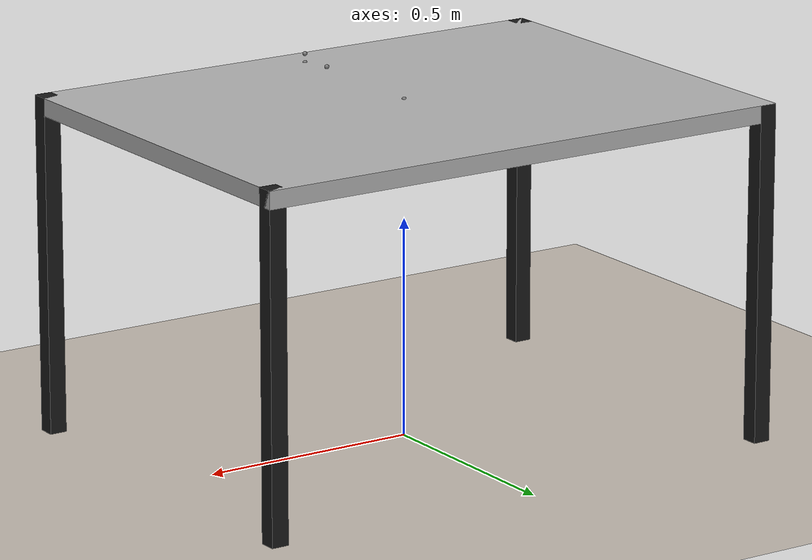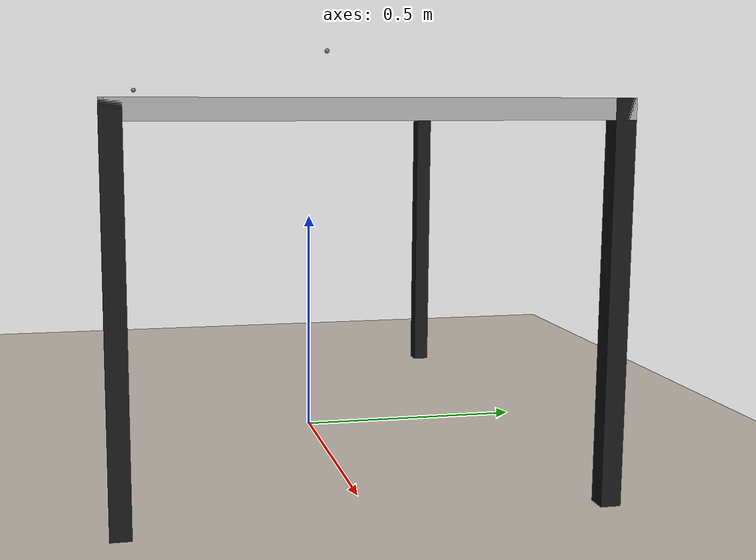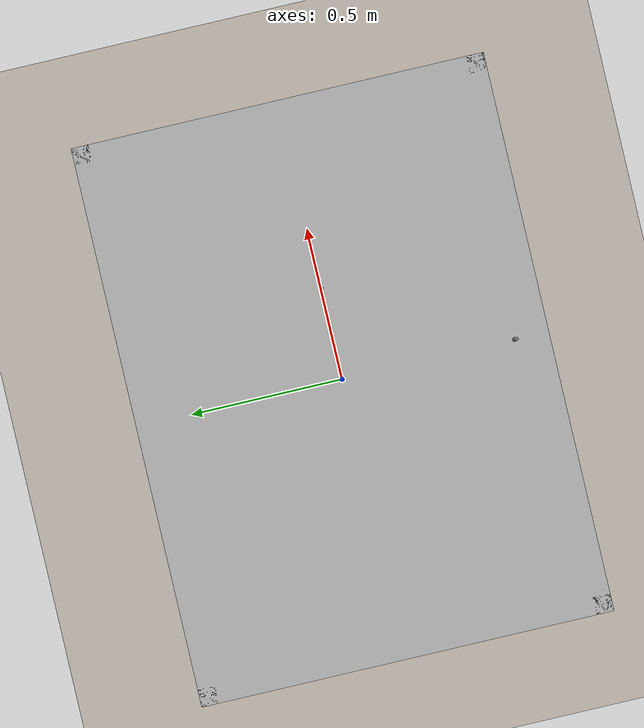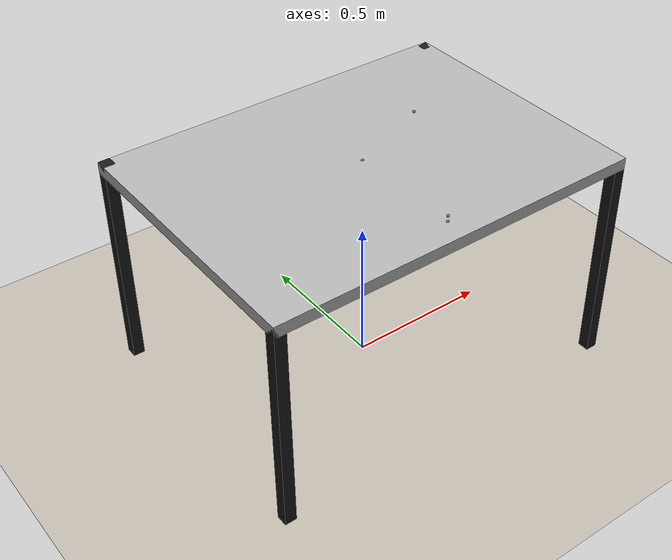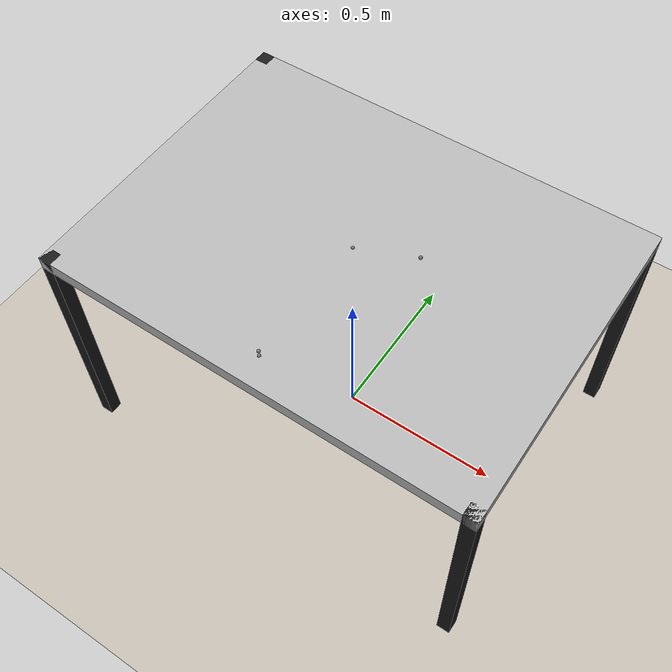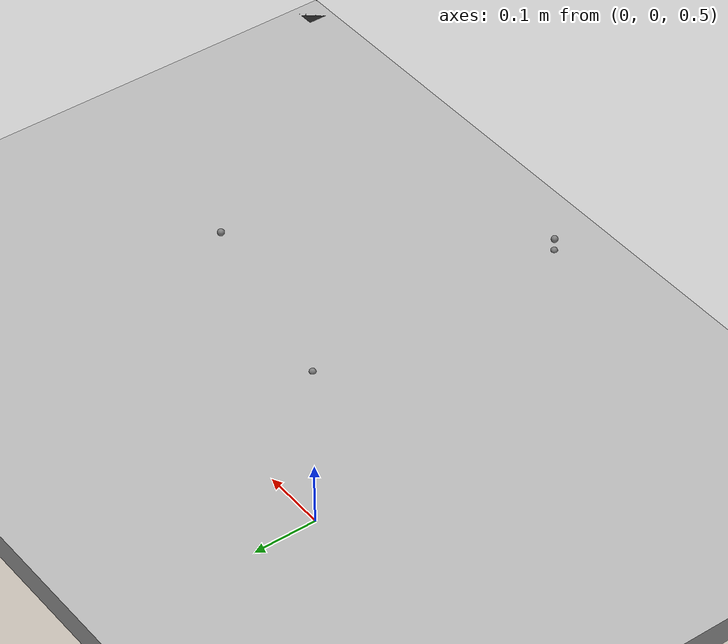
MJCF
<mujoco model="tu_tisch_verstellbar">
    <compiler convexhull="true" angle="radian" meshdir="environment_parts/" texturedir = "environment_parts/TU_table_nice/texture"/>
    <statistic extent="0.3" center="0.3 0 0" meansize=".03"/>
    <default>
      <default class="visual_table">
        <geom group="0" contype="0" conaffinity="0"/>
      </default>
        </default>
    <asset>
	<texture name="texplane" type="2d" file="floor_texture.png"/>
        <texture name="metal" type="cube" builtin="flat" width="512" height="512" rgb1="0.7 0.7 0.7" rgb2="0.6 0.6 0.6"/>
        <texture name="black" type="cube" builtin="flat" width="512" height="512" rgb1="0.1 0.1 0.1" rgb2="0.1 0.1 0.1"/>
        <material name="metal_mat" texture="metal" texrepeat="1 1" texuniform="true" shininess="1"/>
        <material name="black_mat" texture="black" texrepeat="1 1" texuniform="true"/>
	<texture name="skybox" type="skybox" gridsize="3 4" gridlayout=".U..LFRB.D.." file="stormy.png" />

	<material name="matplane" emission="1" texture="texplane" texrepeat="10 10" />
    </asset>
  <worldbody>

		<geom name="ground" type="plane" size="10 10 1" pos="0 0 0" quat="1 0 0 0" material="matplane" condim="3" solimp="0.99 0.99 0.001" solref="0.0001 1"/>

        	<body name="tu_tisch_center_ground" pos="0 0 0.0">
        	<body name="tu_tisch_center_table" pos="0 0 0.77">
                <site name="gripping_point" pos="0.2 0 0.1" quat="0 -1 0 0"/>
                <site name="table_mount1" pos="0 0 0"/>
                <site name="table_mount2" pos="0 -0.4 0"/>
                <site name="table_mount_kinova" pos="0 -0.4 0.02"/>
                  <inertial pos="0.0 0.0 0.0"  mass="1.0" diaginertia="0.0 0.0 0.0"/>
                <!--geom name="table_collision" contype="1" conaffinity="1" type="box" size="0.68 0.5 0.385" pos="0 0 -0.385" material="metal_mat" group="3"/-->

                <geom name="tabletop_visual" type="box" contype="0" conaffinity="0" pos="0 0 -0.02" size="0.65 0.48 0.02" material="metal_mat" class="visual_table"/>
                <geom name="tabletop_collision" type="box" contype="1" conaffinity="1" pos="0 0 -0.04" size="0.65 0.48 0.04"  group="3"/>
                <!-- Visual geometry for legs -->
                <geom name="table_leg1" type="box" contype="0" conaffinity="0" pos="0.63 0.46 -0.385" size="0.02 0.02 0.385" material="black_mat" class="visual_table"/>
                <geom name="table_leg1_collision" type="box" contype="1" conaffinity="1" pos="0.63 0.46 -0.385" size="0.04 0.04 0.385" group="3"/>
                <geom name="table_leg2" type="box" contype="0" conaffinity="0" pos="-0.63 0.46 -0.385" size="0.02 0.02 0.385" material="black_mat" class="visual_table"/>
                <geom name="table_leg2_collision" type="box" contype="1" conaffinity="1" pos="-0.63 0.46 -0.385" size="0.04 0.04 0.385" group="3"/>
                <geom name="table_leg3" type="box" contype="0" conaffinity="0" pos="0.63 -0.46 -0.385" size="0.02 0.02 0.385" material="black_mat" class="visual_table"/>
                <geom name="table_leg3_collision" type="box" contype="1" conaffinity="1" pos="0.63 -0.46 -0.385" size="0.04 0.04 0.385" group="3"/>
                <geom name="table_leg4" type="box" contype="0" conaffinity="0" pos="-0.63 -0.46 -0.385" size="0.02 0.02 0.385" material="black_mat" class="visual_table"/>
                <geom name="table_leg4_collision" type="box" contype="1" conaffinity="1" pos="-0.63 -0.46 -0.385" size="0.04 0.04 0.385" group="3"/>
            </body>
        </body>
  </worldbody>
</mujoco>
